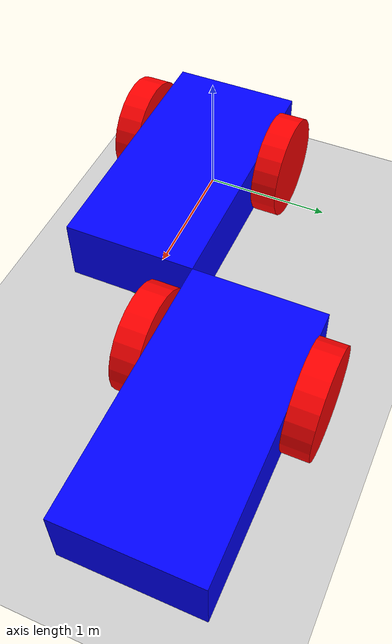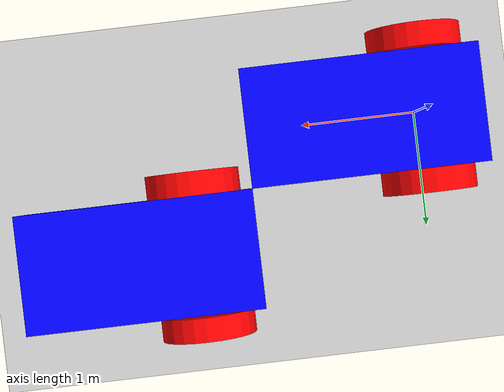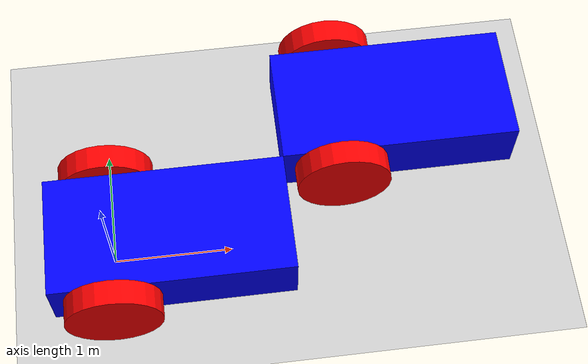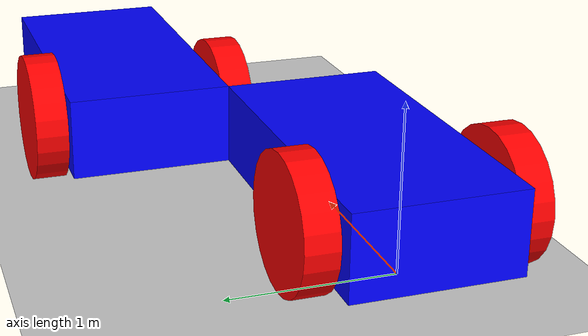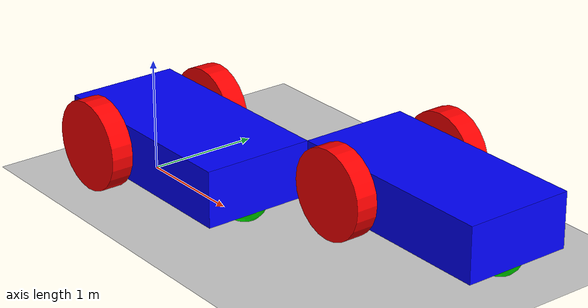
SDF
<?xml version="1.0" ?>
<sdf version="1.8">
    <world name="car_world">
        <physics name="1ms" type="ignored">
            <max_step_size>0.001</max_step_size>
            <real_time_factor>1.0</real_time_factor>
        </physics>
        <plugin
            filename="ignition-gazebo-physics-system"
            name="ignition::gazebo::systems::Physics">
        </plugin>

        <plugin
            filename="ignition-gazebo-user-commands-system"
            name="ignition::gazebo::systems::UserCommands">
        </plugin>

        <plugin
            filename="ignition-gazebo-scene-broadcaster-system"
            name="ignition::gazebo::systems::SceneBroadcaster">
        </plugin>

        <light type="directional" name="sun">
            <cast_shadows>true</cast_shadows>
            <pose>0 0 10 0 0 0</pose>
            <diffuse>0.8 0.8 0.8 1</diffuse>
            <specular>0.2 0.2 0.2 1</specular>
            <attenuation>
                <range>1000</range>
                <constant>0.9</constant>
                <linear>0.01</linear>
                <quadratic>0.001</quadratic>
            </attenuation>
            <direction>-0.5 0.1 -0.9</direction>
        </light>

        <model name="ground_plane">
            <static>true</static>
            <link name="link">
                <collision name="collision">
                <geometry>
                    <plane>
                    <normal>0 0 1</normal>
                    </plane>
                </geometry>
                </collision>
                <visual name="visual">
                <geometry>
                    <plane>
                    <normal>0 0 1</normal>
                    <size>100 100</size>
                    </plane>
                </geometry>
                <material>
                    <ambient>0.8 0.8 0.8 1</ambient>
                    <diffuse>0.8 0.8 0.8 1</diffuse>
                    <specular>0.8 0.8 0.8 1</specular>
                </material>
                </visual>
            </link>
        </model>

        <!-- vehicle_blue_car -->
        <model name='vehicle_blue' canonical_link='chassis'>
            <pose relative_to='world'>0 0 0 0 0 0</pose>   <!--the pose is relative to the world by default-->

            <!--chassis-->
            <link name='chassis'>
                <pose relative_to='__model__'>0.5 0 0.4 0 0 0</pose>
                <inertial> <!--inertial properties of the link mass, inertia matix-->
                    <mass>1.14395</mass>
                    <inertia>
                        <ixx>0.095329</ixx>
                        <ixy>0</ixy>
                        <ixz>0</ixz>
                        <iyy>0.381317</iyy>
                        <iyz>0</iyz>
                        <izz>0.476646</izz>
                    </inertia>
                </inertial>
                <visual name='visual'>
                    <geometry>
                        <box>
                            <size>2.0 1.0 0.5</size>
                        </box>
                    </geometry>
                    <!--Color of the link-->
                    <material>
                        <ambient>0.0 0.0 1.0 1</ambient>
                        <diffuse>0.0 0.0 1.0 1</diffuse>
                        <specular>0.0 0.0 1.0 1</specular>
                    </material>
                </visual>
                <collision name='collision'>
                    <geometry>
                        <box>
                            <size>2.0 1.0 0.5</size>
                        </box>
                    </geometry>
                </collision>
            </link>

            <!--Left wheel-->
            <link name='left_wheel'>
                <pose relative_to="chassis">-0.5 0.6 0 -1.5707 0 0</pose> <!--angles are in radian-->
                <inertial>
                    <mass>1</mass>
                    <inertia>
                        <ixx>0.043333</ixx>
                        <ixy>0</ixy>
                        <ixz>0</ixz>
                        <iyy>0.043333</iyy>
                        <iyz>0</iyz>
                        <izz>0.08</izz>
                    </inertia>
                </inertial>
                <visual name='visual'>
                    <geometry>
                        <cylinder>
                            <radius>0.4</radius>
                            <length>0.2</length>
                        </cylinder>
                    </geometry>
                    <material>
                        <ambient>1.0 0.0 0.0 1</ambient>
                        <diffuse>1.0 0.0 0.0 1</diffuse>
                        <specular>1.0 0.0 0.0 1</specular>
                    </material>
                </visual>
                <collision name='collision'>
                    <geometry>
                        <cylinder>
                            <radius>0.4</radius>
                            <length>0.2</length>
                        </cylinder>
                    </geometry>
                </collision>
            </link>

            <!--The same as left wheel but with different position-->
            <link name='right_wheel'>
                <pose relative_to="chassis">-0.5 -0.6 0 -1.5707 0 0</pose> <!--angles are in radian-->
                <inertial>
                    <mass>1</mass>
                    <inertia>
                        <ixx>0.043333</ixx>
                        <ixy>0</ixy>
                        <ixz>0</ixz>
                        <iyy>0.043333</iyy>
                        <iyz>0</iyz>
                        <izz>0.08</izz>
                    </inertia>
                </inertial>
                <visual name='visual'>
                    <geometry>
                        <cylinder>
                            <radius>0.4</radius>
                            <length>0.2</length>
                        </cylinder>
                    </geometry>
                    <material>
                        <ambient>1.0 0.0 0.0 1</ambient>
                        <diffuse>1.0 0.0 0.0 1</diffuse>
                        <specular>1.0 0.0 0.0 1</specular>
                    </material>
                </visual>
                <collision name='collision'>
                    <geometry>
                        <cylinder>
                            <radius>0.4</radius>
                            <length>0.2</length>
                        </cylinder>
                    </geometry>
                </collision>
            </link>

            <!--arbitrary frame-->
            <frame name="caster_frame" attached_to='chassis'>
                <pose>0.8 0 -0.2 0 0 0</pose>
            </frame>

            <!--caster wheel-->
            <link name='caster'>
                <pose relative_to='caster_frame'/>
                <inertial>
                    <mass>1</mass>
                    <inertia>
                        <ixx>0.016</ixx>
                        <ixy>0</ixy>
                        <ixz>0</ixz>
                        <iyy>0.016</iyy>
                        <iyz>0</iyz>
                        <izz>0.016</izz>
                    </inertia>
                </inertial>
                <visual name='visual'>
                    <geometry>
                        <sphere>
                            <radius>0.2</radius>
                        </sphere>
                    </geometry>
                    <material>
                        <ambient>0.0 1 0.0 1</ambient>
                        <diffuse>0.0 1 0.0 1</diffuse>
                        <specular>0.0 1 0.0 1</specular>
                    </material>
                </visual>
                <collision name='collision'>
                    <geometry>
                        <sphere>
                            <radius>0.2</radius>
                        </sphere>
                    </geometry>
                </collision>
            </link>

            <!--left wheel joint-->
            <joint name='left_wheel_joint' type='revolute'>
                <pose relative_to='left_wheel'/>
                <parent>chassis</parent>
                <child>left_wheel</child>
                <axis>
                    <xyz expressed_in='__model__'>0 1 0</xyz> <!--can be descired to any frame or even arbitrary frames-->
                    <limit>
                        <lower>-1.79769e+308</lower>    <!--negative infinity-->
                        <upper>1.79769e+308</upper>     <!--positive infinity-->
                    </limit>
                </axis>
            </joint>

            <!--right wheel joint-->
            <joint name='right_wheel_joint' type='revolute'>
                <pose relative_to='right_wheel'/>
                <parent>chassis</parent>
                <child>right_wheel</child>
                <axis>
                    <xyz expressed_in='__model__'>0 1 0</xyz>
                    <limit>
                        <lower>-1.79769e+308</lower>    <!--negative infinity-->
                        <upper>1.79769e+308</upper>     <!--positive infinity-->
                    </limit>
                </axis>
            </joint>

            <!--caster wheel joint--> <!--pose defult value is the child-->
            <joint name='caster_wheel' type='ball'>
                <parent>chassis</parent>
                <child>caster</child>
            </joint>
            <!-- Create  topic: cmd_vel - control th  -->
            <plugin
            filename="libgz-sim-diff-drive-system.so"
            name="gz::sim::systems::DiffDrive">
            <left_joint>left_wheel_joint</left_joint>
            <right_joint>right_wheel_joint</right_joint>
            <wheel_separation>1.2</wheel_separation>
            <wheel_radius>0.4</wheel_radius>
            <odom_publish_frequency>1</odom_publish_frequency>
            <topic>cmd_vel</topic>
            </plugin>

            <plugin filename="KeyPublisher" name="KeyPublisher"/>
            <!-- Moving Backward-->
            <plugin filename="libgz-sim-triggered-publisher-system.so"
                    name="gz::sim::systems::TriggeredPublisher">
                <input type="gz.msgs.Int32" topic="/keyboard/keypress">
                    <match field="data">16777237</match>
                </input>
                <output type="gz.msgs.Twist" topic="/cmd_vel">
                    linear: {x: -0.5}, angular: {z: 0.0}
                </output>
            </plugin>
            <!-- Moving Forward-->
            <plugin filename="libgz-sim-triggered-publisher-system.so"
                    name="gz::sim::systems::TriggeredPublisher">
                <input type="gz.msgs.Int32" topic="/keyboard/keypress">
                    <match field="data">16777235</match>
                </input>
                <output type="gz.msgs.Twist" topic="/cmd_vel">
                    linear: {x: 0.5}, angular: {z: 0}
                </output>
            </plugin>

            <!-- Moving Left-->
            <plugin filename="libgz-sim-triggered-publisher-system.so"
                    name="gz::sim::systems::TriggeredPublisher">
                <input type="gz.msgs.Int32" topic="/keyboard/keypress">
                    <match field="data">16777234</match>
                </input>
                <output type="gz.msgs.Twist" topic="/cmd_vel">
                    linear: {x: 0.0}, angular: {z: 0.5}
                </output>
            </plugin>

            <!-- Moving Right-->
            <plugin filename="libgz-sim-triggered-publisher-system.so"
                    name="gz::sim::systems::TriggeredPublisher">
                <input type="gz.msgs.Int32" topic="/keyboard/keypress">
                    <match field="data">16777236</match>
                </input>
                <output type="gz.msgs.Twist" topic="/cmd_vel">
                    linear: {x: 0.0}, angular: {z: -0.5}
                </output>
            </plugin>
        </model>

         <model name='vehicle_blue_2' canonical_link='chassis'>
            <pose relative_to='world'>2 1 0 0 0 0</pose>   <!--the pose is relative to the world by default-->
            <!--chassis-->
            <link name='chassis'>
                <pose relative_to='__model__'>0.5 0 0.4 0 0 0</pose>
                <inertial> <!--inertial properties of the link mass, inertia matix-->
                    <mass>1.14395</mass>
                    <inertia>
                        <ixx>0.095329</ixx>
                        <ixy>0</ixy>
                        <ixz>0</ixz>
                        <iyy>0.381317</iyy>
                        <iyz>0</iyz>
                        <izz>0.476646</izz>
                    </inertia>
                </inertial>
                <visual name='visual'>
                    <geometry>
                        <box>
                            <size>2.0 1.0 0.5</size>
                        </box>
                    </geometry>
                    <!--Color of the link-->
                    <material>
                        <ambient>0.0 0.0 1.0 1</ambient>
                        <diffuse>0.0 0.0 1.0 1</diffuse>
                        <specular>0.0 0.0 1.0 1</specular>
                    </material>
                </visual>
                <collision name='collision'>
                    <geometry>
                        <box>
                            <size>2.0 1.0 0.5</size>
                        </box>
                    </geometry>
                </collision>
            </link>

            <!--Left wheel-->
            <link name='left_wheel'>
                <pose relative_to="chassis">-0.5 0.6 0 -1.5707 0 0</pose> <!--angles are in radian-->
                <inertial>
                    <mass>1</mass>
                    <inertia>
                        <ixx>0.043333</ixx>
                        <ixy>0</ixy>
                        <ixz>0</ixz>
                        <iyy>0.043333</iyy>
                        <iyz>0</iyz>
                        <izz>0.08</izz>
                    </inertia>
                </inertial>
                <visual name='visual'>
                    <geometry>
                        <cylinder>
                            <radius>0.4</radius>
                            <length>0.2</length>
                        </cylinder>
                    </geometry>
                    <material>
                        <ambient>1.0 0.0 0.0 1</ambient>
                        <diffuse>1.0 0.0 0.0 1</diffuse>
                        <specular>1.0 0.0 0.0 1</specular>
                    </material>
                </visual>
                <collision name='collision'>
                    <geometry>
                        <cylinder>
                            <radius>0.4</radius>
                            <length>0.2</length>
                        </cylinder>
                    </geometry>
                </collision>
            </link>

            <!--The same as left wheel but with different position-->
            <link name='right_wheel'>
                <pose relative_to="chassis">-0.5 -0.6 0 -1.5707 0 0</pose> <!--angles are in radian-->
                <inertial>
                    <mass>1</mass>
                    <inertia>
                        <ixx>0.043333</ixx>
                        <ixy>0</ixy>
                        <ixz>0</ixz>
                        <iyy>0.043333</iyy>
                        <iyz>0</iyz>
                        <izz>0.08</izz>
                    </inertia>
                </inertial>
                <visual name='visual'>
                    <geometry>
                        <cylinder>
                            <radius>0.4</radius>
                            <length>0.2</length>
                        </cylinder>
                    </geometry>
                    <material>
                        <ambient>1.0 0.0 0.0 1</ambient>
                        <diffuse>1.0 0.0 0.0 1</diffuse>
                        <specular>1.0 0.0 0.0 1</specular>
                    </material>
                </visual>
                <collision name='collision'>
                    <geometry>
                        <cylinder>
                            <radius>0.4</radius>
                            <length>0.2</length>
                        </cylinder>
                    </geometry>
                </collision>
            </link>

            <!--arbitrary frame-->
            <frame name="caster_frame" attached_to='chassis'>
                <pose>0.8 0 -0.2 0 0 0</pose>
            </frame>

            <!--caster wheel-->
            <link name='caster'>
                <pose relative_to='caster_frame'/>
                <inertial>
                    <mass>1</mass>
                    <inertia>
                        <ixx>0.016</ixx>
                        <ixy>0</ixy>
                        <ixz>0</ixz>
                        <iyy>0.016</iyy>
                        <iyz>0</iyz>
                        <izz>0.016</izz>
                    </inertia>
                </inertial>
                <visual name='visual'>
                    <geometry>
                        <sphere>
                            <radius>0.2</radius>
                        </sphere>
                    </geometry>
                    <material>
                        <ambient>0.0 1 0.0 1</ambient>
                        <diffuse>0.0 1 0.0 1</diffuse>
                        <specular>0.0 1 0.0 1</specular>
                    </material>
                </visual>
                <collision name='collision'>
                    <geometry>
                        <sphere>
                            <radius>0.2</radius>
                        </sphere>
                    </geometry>
                </collision>
            </link>

            <!--left wheel joint-->
            <joint name='left_wheel_joint' type='revolute'>
                <pose relative_to='left_wheel'/>
                <parent>chassis</parent>
                <child>left_wheel</child>
                <axis>
                    <xyz expressed_in='__model__'>0 1 0</xyz> <!--can be descired to any frame or even arbitrary frames-->
                    <limit>
                        <lower>-1.79769e+308</lower>    <!--negative infinity-->
                        <upper>1.79769e+308</upper>     <!--positive infinity-->
                    </limit>
                </axis>
            </joint>

            <!--right wheel joint-->
            <joint name='right_wheel_joint' type='revolute'>
                <pose relative_to='right_wheel'/>
                <parent>chassis</parent>
                <child>right_wheel</child>
                <axis>
                    <xyz expressed_in='__model__'>0 1 0</xyz>
                    <limit>
                        <lower>-1.79769e+308</lower>    <!--negative infinity-->
                        <upper>1.79769e+308</upper>     <!--positive infinity-->
                    </limit>
                </axis>
            </joint>

            <!--caster wheel joint--> <!--pose defult value is the child-->
            <joint name='caster_wheel' type='ball'>
                <parent>chassis</parent>
                <child>caster</child>
            </joint>
            <!-- Create  topic: cmd_vel - control th  -->
            <plugin
            filename="libgz-sim-diff-drive-system.so"
            name="gz::sim::systems::DiffDrive">
            <left_joint>left_wheel_joint</left_joint>
            <right_joint>right_wheel_joint</right_joint>
            <wheel_separation>1.2</wheel_separation>
            <wheel_radius>0.4</wheel_radius>
            <odom_publish_frequency>1</odom_publish_frequency>
            <topic>cmd_vel_1</topic>
            </plugin>

            <plugin filename="KeyPublisher" name="KeyPublisher"/>
            <!-- Moving Backward-->
            <plugin filename="libgz-sim-triggered-publisher-system.so"
                    name="gz::sim::systems::TriggeredPublisher">
                <input type="gz.msgs.Int32" topic="/keyboard/keypress">
                    <match field="data">83</match>
                </input>
                <output type="gz.msgs.Twist" topic="/cmd_vel_1">
                    linear: {x: -0.5}, angular: {z: 0.0}
                </output>
            </plugin>
            <!-- Moving Forward-->
            <plugin filename="libgz-sim-triggered-publisher-system.so"
                    name="gz::sim::systems::TriggeredPublisher">
                <input type="gz.msgs.Int32" topic="/keyboard/keypress">
                    <match field="data">87</match>
                </input>
                <output type="gz.msgs.Twist" topic="/cmd_vel_1">
                    linear: {x: 0.5}, angular: {z: 0}
                </output>
            </plugin>

            <!-- Moving Left-->
            <plugin filename="libgz-sim-triggered-publisher-system.so"
                    name="gz::sim::systems::TriggeredPublisher">
                <input type="gz.msgs.Int32" topic="/keyboard/keypress">
                    <match field="data">65</match>
                </input>
                <output type="gz.msgs.Twist" topic="/cmd_vel_1">
                    linear: {x: 0.0}, angular: {z: 0.5}
                </output>
            </plugin>

            <!-- Moving Right-->
            <plugin filename="libgz-sim-triggered-publisher-system.so"
                    name="gz::sim::systems::TriggeredPublisher">
                <input type="gz.msgs.Int32" topic="/keyboard/keypress">
                    <match field="data">68</match>
                </input>
                <output type="gz.msgs.Twist" topic="/cmd_vel_1">
                    linear: {x: 0.0}, angular: {z: -0.5}
                </output>
            </plugin>
        </model>

    </world>
</sdf>
